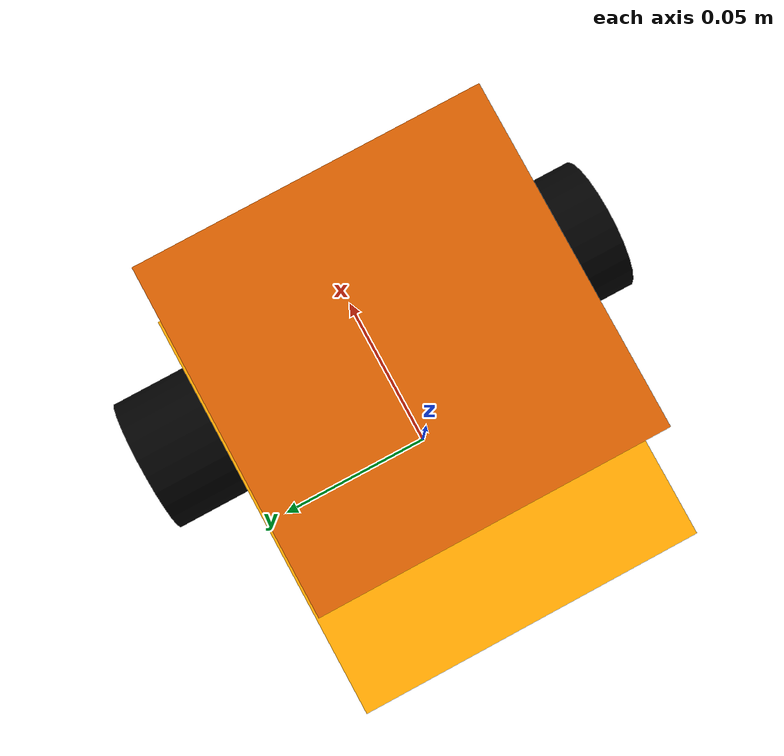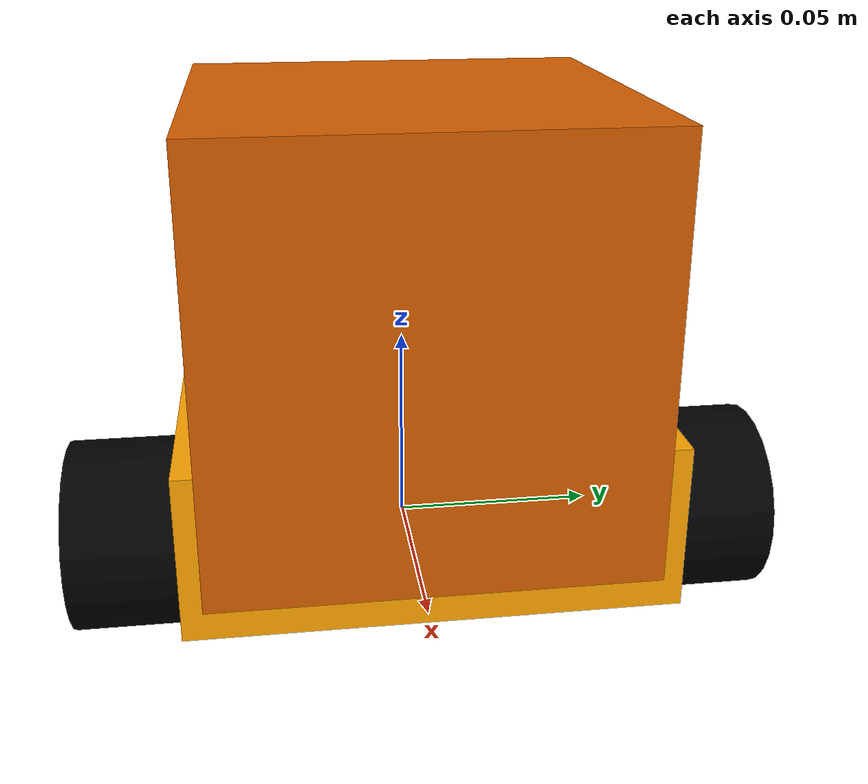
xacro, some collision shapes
<?xml version="1.0"?>
<robot name="diffbot_2wheel" xmlns:xacro="http://www.ros.org/wiki/xacro">

<!--Masses-->
<xacro:property name="chassis_mass" value="35"/>
<!--xacro:property name="wheel_mass" value="0.0283495"/-->
<xacro:property name="wheel_mass" value="0.1"/>
<xacro:property name="caster_mass" value="13"/>

<!--Dimensions-->
<xacro:property name="chassis_length" value="0.13"/>
<xacro:property name="chassis_width" value="0.1095375"/>
<xacro:property name="chassis_height" value="0.0381"/>
<xacro:property name="caster_radius" value="0.02175"/>
<xacro:property name="wheel_radius" value="0.02175"/>
<xacro:property name="wheel_length" value="0.0254"/>

<!--Positions-->
<xacro:property name="wheel_x_pos" value="${chassis_length / 4}"/>
<xacro:property name="wheel_y_pos" value="${(chassis_width / 2) + (wheel_length / 2)}"/>
<xacro:property name="wheel_z_pos" value="-0.01"/>
<xacro:property name="caster_x_pos" value="${-(chassis_length / 4)}"/>
<xacro:property name="caster_y_pos" value="0"/>
<xacro:property name="caster_z_pos" value="-0.01"/>

<!--Inertial 1-->
<xacro:macro name="chassis_inertial" params="mass">
    <inertial>
        <mass value="${mass}"/>
        <inertia ixx="${(1/12) * chassis_mass * ( (chassis_height * chassis_height) + (chassis_length * chassis_length)) }" ixy="0" ixz="0"
                iyy="${(1/12) * chassis_mass * ( (chassis_width * chassis_width) + (chassis_height * chassis_height)) }" iyz="0"
                izz="${(1/12) * chassis_mass * ( (chassis_width * chassis_width) + (chassis_length * chassis_length)) }"/>
        </inertial>
</xacro:macro>

<!--Inertial 2-->
<xacro:macro name="wheel_inertial" params="mass"> <!--True inertial measurements for wheels are too small, so they're substituted with 0.1-->
    <inertial>
        <mass value="${mass}"/>
        <inertia ixx="0.1" ixy="0" ixz="0"
                iyy="0.1" iyz="0"
                izz="0.1"/>
        </inertial>
</xacro:macro>

<!--Inertial 3-->0.1
<xacro:macro name="caster_inertial" params="mass">
    <inertial>
        <mass value="${mass}"/>
        <inertia ixx="${(2/5) * caster_mass * (caster_radius * caster_radius) }" ixy="0" ixz="0"
                iyy="${(2/5) * caster_mass * (caster_radius * caster_radius) }" iyz="0"
                izz="${(2/5) * caster_mass * (caster_radius * caster_radius) }"/>
        </inertial>
</xacro:macro>

<!--Base Footprint-->
    <link name="base_footprint"></link>

    <joint name="base_footprint_to_base_link" type="fixed">
        <parent link="base_footprint"/>
        <child link="base_link"/>
        <origin xyz="0 0 ${wheel_radius + 0.005}" rpy="0 0 0"/>
        <axis xyz="0 0 0"/>
    </joint>

<!--Base Link-->
    <link name="base_link">

        <pose>0 0 0.1    0 0 0</pose> <!--Where to place robot in Gazebo-->

        <xacro:chassis_inertial mass="${chassis_mass}"/>

        <collision>
            <geometry>
                <box size="${chassis_length} ${chassis_width} ${chassis_height}"/>
            </geometry>
        </collision>

        <visual>
            <geometry>
                <box size="${chassis_length} ${chassis_width} ${chassis_height}"/>
            </geometry>
            <material name="orange">
                <color rgba="1 0.647 0 1"/>
            </material>
        </visual>
    </link>

    <gazebo reference="base_link">
        <material>Gazebo/Orange</material>
    </gazebo>

<!--Rear Caster-->
    <link name="caster_link">

        <xacro:caster_inertial mass="${caster_mass}"/>

        <collision>
            <origin xyz="0 0 0" rpy="0 0 0"/>
            <geometry>
                <sphere radius="${caster_radius}"/>
            </geometry>
        </collision>

        <visual>
            <origin xyz="0 0 0" rpy="0 0 0"/>
            <geometry>
                <sphere radius="${caster_radius}"/>
            </geometry>
            <material name="grey">
                <color rgba="0.392 0.392 0.392 1"/>
            </material>
        </visual>
    </link>

    <joint name="caster_joint" type="fixed">
        <parent link="base_link"/>
        <child link="caster_link"/>
        <origin xyz="${caster_x_pos} ${caster_y_pos} ${caster_z_pos}" rpy="0 0 0"/>
        <axis xyz="0 0 0"/>
    </joint>

    <gazebo reference="caster_link">
        <mu1>0.0</mu1>
        <mu2>0.0</mu2>
        <material>Gazebo/Red</material>
    </gazebo>

<!--Right Wheel-->
    <link name="right_wheel">

        <xacro:wheel_inertial mass="${wheel_mass}"/>

        <collision>
            <origin xyz="0 0 0" rpy="0 0 0"/>
            <geometry>
                <cylinder radius="${wheel_radius}" length="${wheel_length}"/>
            </geometry>
        </collision>

        <visual>
            <origin xyz="0 0 0" rpy="0 0 0"/>
            <geometry>
                <cylinder radius="${wheel_radius}" length="${wheel_length}"/>
            </geometry>
            <material name="black">
                <color rgba="0 0 0 1"/>
            </material>
        </visual>
    </link>

    <joint name="joint_right_wheel" type="continuous">
        <parent link="base_link"/>
        <child link="right_wheel"/>
        <origin xyz="${wheel_x_pos} -${wheel_y_pos} ${wheel_z_pos}" rpy="${pi/2} 0 0"/>
        <axis xyz="0 0 -1"/>
        <limit effort="10000" velocity="1000"/>
        <dynamics damping="1.0" friction="1.0"/>
    </joint>

    <gazebo reference="right_wheel">
        <material>Gazebo/Black</material>
    </gazebo>

<!--Left Wheel-->
    <link name="left_wheel">

        <xacro:wheel_inertial mass="${wheel_mass}"/>

        <collision>
            <origin xyz="0 0 0" rpy="0 0 0"/>
            <geometry>
                <cylinder radius="${wheel_radius}" length="${wheel_length}"/>
            </geometry>
        </collision>

        <visual>
            <origin xyz="0 0 0" rpy="0 0 0"/>
            <geometry>
                <cylinder radius="${wheel_radius}" length="${wheel_length}"/>
            </geometry>
            <material name="black">
                <color rgba="0 0 0 1"/>
            </material>
        </visual>
    </link>

    <joint name="joint_left_wheel" type="continuous">
        <parent link="base_link"/>
        <child link="left_wheel"/>
        <origin xyz="${wheel_x_pos} ${wheel_y_pos} ${wheel_z_pos}" rpy="-${pi/2} 0 0"/>
        <axis xyz="0 0 1"/>
        <limit effort="10000" velocity="1000"/>
        <dynamics damping="1.0" friction="1.0"/>
    </joint>

    <gazebo reference="left_wheel">
        <material>Gazebo/Black</material>
    </gazebo>

<!-- Hokuyo Laser -->
    <link name="hokuyo_link">
        <collision>
            <origin xyz="0 0 0" rpy="0 0 0"/>
            <geometry>
                <box size="0.1 0.1 0.1"/>
            </geometry>
        </collision>
        <visual>
            <origin xyz="0 0 0" rpy="0 0 0"/>
            <geometry>
                <!--Mesh obtained from  https://github.com/ros-simulation/gazebo_ros_demos-->
                <mesh filename="package://diffbot_1/meshes/hokuyo.dae"/>
            </geometry>
        </visual>
        <inertial>
            <mass value="1e-5"/>
            <origin xyz="0 0 0" rpy="0 0 0"/>
            <inertia ixx="1e-6" ixy="0" ixz="0" iyy="1e-6" iyz="0" izz="1e-6" />
        </inertial>
    </link>

    <joint name="hokuyo_joint" type="fixed">
        <axis xyz="0 1 0" />
        <origin xyz="${chassis_length / 8} 0 ${chassis_height}" rpy="0 0 0"/>
        <parent link="base_link"/>
        <child link="hokuyo_link"/>
    </joint>

<!-- Gazebo Hokuyo -->
    <gazebo reference="hokuyo_link">
        <sensor type="ray" name="head_hokuyo_sensor">
            <pose>0 0 0 0 0 0</pose>
            <visualize>true</visualize>
            <update_rate>40</update_rate>
                <ray>
                    <scan>
                        <horizontal>
                            <samples>720</samples>
                            <resolution>1</resolution>
                            <min_angle>-1.570796</min_angle>
                            <max_angle>1.570796</max_angle>
                        </horizontal>
                    </scan>
                    <range>
                        <min>0.10</min>
                        <max>30.0</max>
                        <resolution>0.01</resolution>
                    </range>
                    <noise>
                        <type>gaussian</type>
                        <mean>0.0</mean>
                        <stddev>0.01</stddev>
                    </noise>
                </ray>
                <plugin name="gazebo_ros_head_hokuyo_controller" filename="libgazebo_ros_laser.so">
                    <topicName>/rrbot/laser/scan</topicName>
                    <frameName>hokuyo_link</frameName>
                </plugin>
        </sensor>
    </gazebo>

<!--Gazebo Plugin-->
    <gazebo>
        <plugin name="differential_drive_controller" filename="libgazebo_ros_diff_drive.so">
            <alwaysOn>true</alwaysOn>
            <updateRate>20</updateRate>
            <leftJoint>joint_left_wheel</leftJoint>
            <rightJoint>joint_right_wheel</rightJoint>
            <wheelSeparation>0.1095375</wheelSeparation>
            <wheelDiameter>0.0635</wheelDiameter>
            <torque>2.5</torque>
            <commandTopic>cmd_vel</commandTopic>
            <odometryTopic>odom</odometryTopic>
            <odometryFrame>odom</odometryFrame>
            <robotBaseFrame>base_footprint</robotBaseFrame>
        </plugin>
    </gazebo>
</robot>
